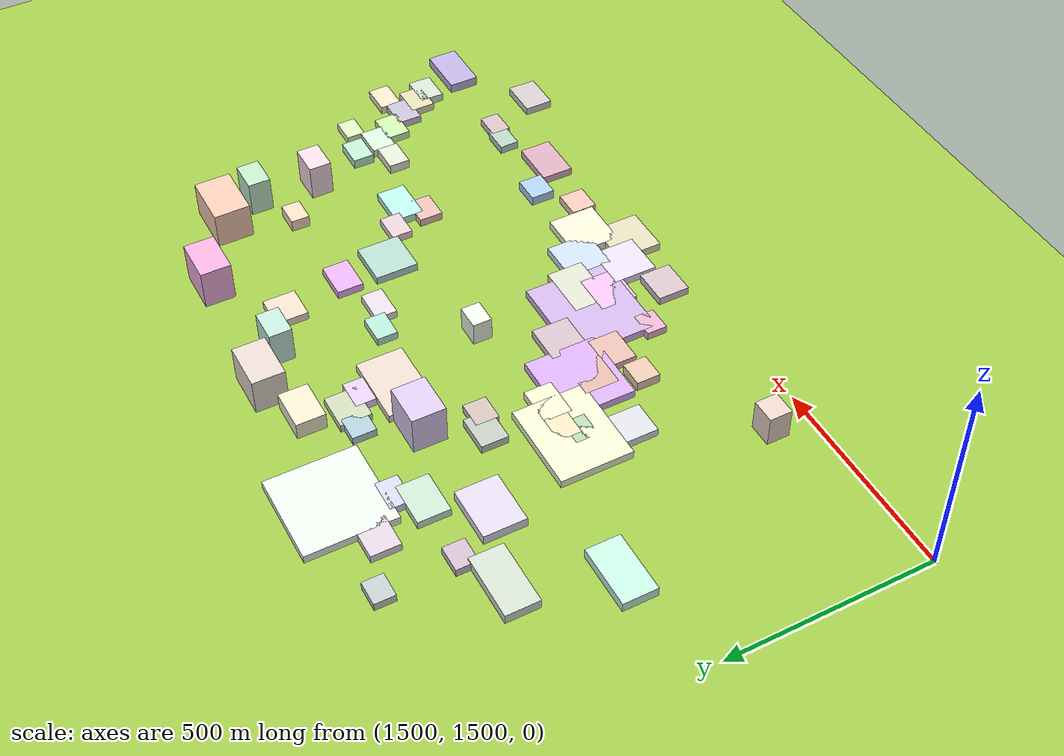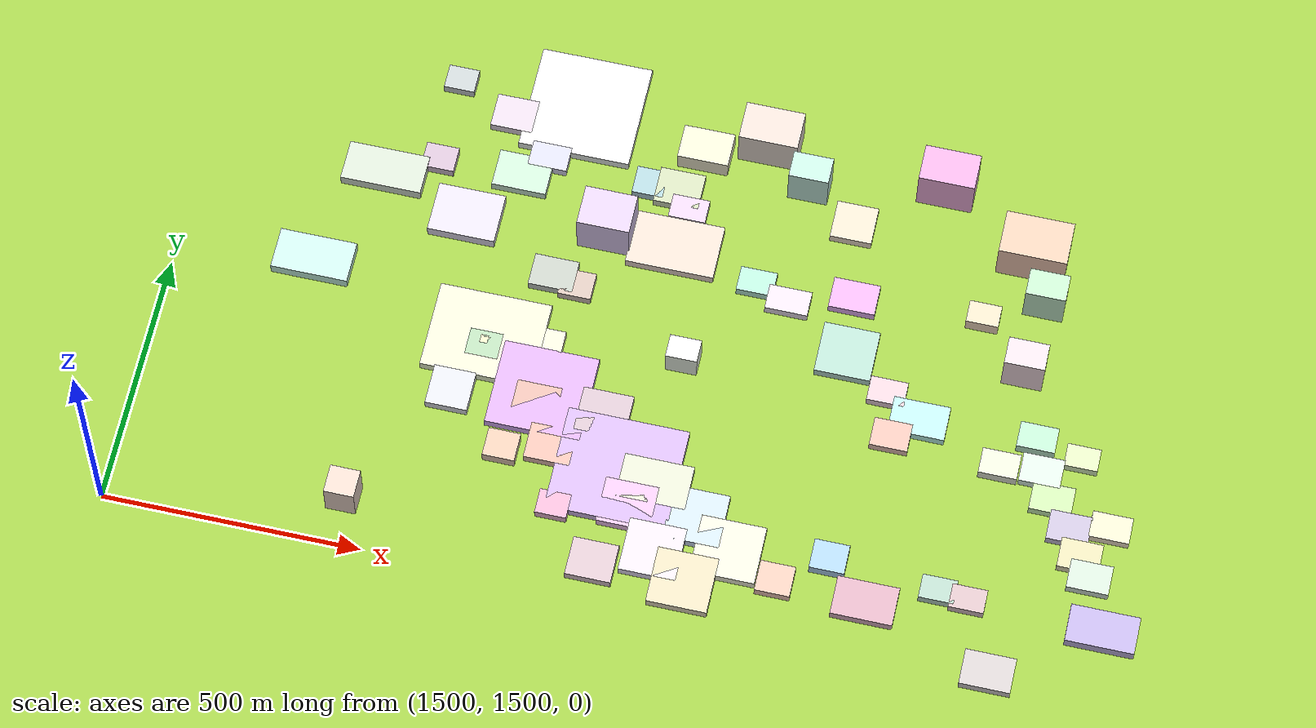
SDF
<sdf version="1.9">
 <world name="city_map">
  <model name="ground_plane">
   <static>1</static>
   <link name="link">
    <collision name="collision">
     <geometry><plane><normal>0 0 1</normal><size>11000 11000</size></plane></geometry>
    </collision>
    <visual name="visual">
     <geometry><plane><normal>0 0 1</normal><size>11000 11000</size></plane></geometry>
     <material>
      <ambient>0.551 0.712 0.210 1</ambient>
      <diffuse>0.651 0.812 0.310 1</diffuse>
      <specular>0.1 0.1 0.05 1</specular>
     </material>
    </visual>
   </link>
  </model>
  <model name="building_192952593">
   <static>1</static>
   <pose>2430.9733242705074 1758.978914244576 10.0 0 0 0</pose>
   <link name="link">
    <collision name="collision">
     <geometry><box><size>233.57729999990795 207.46160318499068 20</size></box></geometry>
    </collision>
    <visual name="visual">
     <cast_shadows>false</cast_shadows>
     <geometry><box><size>233.57729999990795 207.46160318499068 20</size></box></geometry>
     <material>
      <ambient>0.739 0.631 0.830 1</ambient>
      <diffuse>0.839 0.731 0.930 1</diffuse>
      <specular>0.252 0.219 0.279 1</specular>
      <emissive>0.01 0.01 0.01 1</emissive>
     </material>
    </visual>
   </link>
  </model>
  <model name="building_914025178">
   <static>1</static>
   <pose>2199.97340372715 2501.3868979094004 10.0 0 0 0</pose>
   <link name="link">
    <collision name="collision">
     <geometry><box><size>218.64249799259497 214.09680000019193 20</size></box></geometry>
    </collision>
    <visual name="visual">
     <cast_shadows>false</cast_shadows>
     <geometry><box><size>218.64249799259497 214.09680000019193 20</size></box></geometry>
     <material>
      <ambient>0.839 0.862 0.839 1</ambient>
      <diffuse>0.939 0.962 0.939 1</diffuse>
      <specular>0.282 0.289 0.282 1</specular>
      <emissive>0.01 0.01 0.01 1</emissive>
     </material>
    </visual>
   </link>
  </model>
  <model name="building_987098441">
   <static>1</static>
   <pose>2126.0891498155593 1977.3232361965406 10.0 0 0 0</pose>
   <link name="link">
    <collision name="collision">
     <geometry><box><size>217.82639999960907 174.1131540679795 20</size></box></geometry>
    </collision>
    <visual name="visual">
     <cast_shadows>false</cast_shadows>
     <geometry><box><size>217.82639999960907 174.1131540679795 20</size></box></geometry>
     <material>
      <ambient>0.859 0.899 0.741 1</ambient>
      <diffuse>0.959 0.999 0.841 1</diffuse>
      <specular>0.288 0.300 0.252 1</specular>
      <emissive>0.01 0.01 0.01 1</emissive>
     </material>
    </visual>
   </link>
  </model>
  <model name="building_529718011">
   <static>1</static>
   <pose>2256.605788736338 1886.7054164940168 10.0 0 0 0</pose>
   <link name="link">
    <collision name="collision">
     <geometry><box><size>183.77112242357052 172.79369999941707 20</size></box></geometry>
    </collision>
    <visual name="visual">
     <cast_shadows>false</cast_shadows>
     <geometry><box><size>183.77112242357052 172.79369999941707 20</size></box></geometry>
     <material>
      <ambient>0.770 0.605 0.899 1</ambient>
      <diffuse>0.870 0.705 0.999 1</diffuse>
      <specular>0.261 0.211 0.300 1</specular>
      <emissive>0.01 0.01 0.01 1</emissive>
     </material>
    </visual>
   </link>
  </model>
  <model name="building_26879220">
   <static>1</static>
   <pose>2434.777038205377 2245.1851874768613 10.0 0 0 0</pose>
   <link name="link">
    <collision name="collision">
     <geometry><box><size>172.15175727633857 111.17760000023935 20</size></box></geometry>
    </collision>
    <visual name="visual">
     <cast_shadows>false</cast_shadows>
     <geometry><box><size>172.15175727633857 111.17760000023935 20</size></box></geometry>
     <material>
      <ambient>0.846 0.770 0.721 1</ambient>
      <diffuse>0.946 0.870 0.821 1</diffuse>
      <specular>0.284 0.261 0.246 1</specular>
      <emissive>0.01 0.01 0.01 1</emissive>
     </material>
    </visual>
   </link>
  </model>
  <model name="building_103001365">
   <static>1</static>
   <pose>2668.338405556142 1644.0370597681338 10.0 0 0 0</pose>
   <link name="link">
    <collision name="collision">
     <geometry><box><size>123.8771522375564 115.70639999953158 20</size></box></geometry>
    </collision>
    <visual name="visual">
     <cast_shadows>false</cast_shadows>
     <geometry><box><size>123.8771522375564 115.70639999953158 20</size></box></geometry>
     <material>
      <ambient>0.877 0.870 0.767 1</ambient>
      <diffuse>0.977 0.970 0.867 1</diffuse>
      <specular>0.293 0.291 0.260 1</specular>
      <emissive>0.01 0.01 0.01 1</emissive>
     </material>
    </visual>
   </link>
  </model>
  <model name="building_860429482">
   <static>1</static>
   <pose>2029.0040202312794 2221.932590815237 12.0 0 0 0</pose>
   <link name="link">
    <collision name="collision">
     <geometry><box><size>131.77462947324065 100.96559999999499 24.0</size></box></geometry>
    </collision>
    <visual name="visual">
     <cast_shadows>false</cast_shadows>
     <geometry><box><size>131.77462947324065 100.96559999999499 24.0</size></box></geometry>
     <material>
      <ambient>0.801 0.777 0.850 1</ambient>
      <diffuse>0.901 0.877 0.950 1</diffuse>
      <specular>0.270 0.263 0.285 1</specular>
      <emissive>0.01 0.01 0.01 1</emissive>
     </material>
    </visual>
   </link>
  </model>
  <model name="building_731170003">
   <static>1</static>
   <pose>2598.63968392416 1565.1178789204816 10.0 0 0 0</pose>
   <link name="link">
    <collision name="collision">
     <geometry><box><size>115.48656158688344 111.27749999982939 20</size></box></geometry>
    </collision>
    <visual name="visual">
     <cast_shadows>false</cast_shadows>
     <geometry><box><size>115.48656158688344 111.27749999982939 20</size></box></geometry>
     <material>
      <ambient>0.816 0.780 0.661 1</ambient>
      <diffuse>0.916 0.880 0.761 1</diffuse>
      <specular>0.275 0.264 0.228 1</specular>
      <emissive>0.01 0.01 0.01 1</emissive>
     </material>
    </visual>
   </link>
  </model>
  <model name="building_128959019">
   <static>1</static>
   <pose>1852.41198844458 2282.8746508487125 12.0 0 0 0</pose>
   <link name="link">
    <collision name="collision">
     <geometry><box><size>158.29709999957942 80.5399535384255 24.0</size></box></geometry>
    </collision>
    <visual name="visual">
     <cast_shadows>false</cast_shadows>
     <geometry><box><size>158.29709999957942 80.5399535384255 24.0</size></box></geometry>
     <material>
      <ambient>0.748 0.793 0.731 1</ambient>
      <diffuse>0.848 0.893 0.831 1</diffuse>
      <specular>0.254 0.268 0.249 1</specular>
      <emissive>0.01 0.01 0.01 1</emissive>
     </material>
    </visual>
   </link>
  </model>
  <model name="building_422966685">
   <static>1</static>
   <pose>1765.1840577268715 2067.92727549437 12.0 0 0 0</pose>
   <link name="link">
    <collision name="collision">
     <geometry><box><size>150.27707911580976 82.78379999968166 24.0</size></box></geometry>
    </collision>
    <visual name="visual">
     <cast_shadows>false</cast_shadows>
     <geometry><box><size>150.27707911580976 82.78379999968166 24.0</size></box></geometry>
     <material>
      <ambient>0.696 0.881 0.805 1</ambient>
      <diffuse>0.796 0.981 0.905 1</diffuse>
      <specular>0.239 0.294 0.271 1</specular>
      <emissive>0.01 0.01 0.01 1</emissive>
     </material>
    </visual>
   </link>
  </model>
  <model name="building_61609927">
   <static>1</static>
   <pose>2505.773907117025 1749.1113927591066 10.0 0 0 0</pose>
   <link name="link">
    <collision name="collision">
     <geometry><box><size>133.42159946050293 88.6224000000837 20</size></box></geometry>
    </collision>
    <visual name="visual">
     <cast_shadows>false</cast_shadows>
     <geometry><box><size>133.42159946050293 88.6224000000837 20</size></box></geometry>
     <material>
      <ambient>0.795 0.810 0.730 1</ambient>
      <diffuse>0.895 0.910 0.830 1</diffuse>
      <specular>0.269 0.273 0.249 1</specular>
      <emissive>0.01 0.01 0.01 1</emissive>
     </material>
    </visual>
   </link>
  </model>
  <model name="building_470283680">
   <static>1</static>
   <pose>2531.378564185769 1613.6621232859181 10.0 0 0 0</pose>
   <link name="link">
    <collision name="collision">
     <geometry><box><size>108.92429999993425 106.40391803024842 20</size></box></geometry>
    </collision>
    <visual name="visual">
     <cast_shadows>false</cast_shadows>
     <geometry><box><size>108.92429999993425 106.40391803024842 20</size></box></geometry>
     <material>
      <ambient>0.827 0.799 0.879 1</ambient>
      <diffuse>0.927 0.899 0.979 1</diffuse>
      <specular>0.278 0.270 0.294 1</specular>
      <emissive>0.01 0.01 0.01 1</emissive>
     </material>
    </visual>
   </link>
  </model>
  <model name="building_365911970">
   <static>1</static>
   <pose>3110.133406449725 2376.165444056595 45.0 0 0 0</pose>
   <link name="link">
    <collision name="collision">
     <geometry><box><size>132.081319806695 87.59009999985068 90.0</size></box></geometry>
    </collision>
    <visual name="visual">
     <cast_shadows>false</cast_shadows>
     <geometry><box><size>132.081319806695 87.59009999985068 90.0</size></box></geometry>
     <material>
      <ambient>0.885 0.715 0.625 1</ambient>
      <diffuse>0.985 0.815 0.725 1</diffuse>
      <specular>0.295 0.244 0.218 1</specular>
      <emissive>0.01 0.01 0.01 1</emissive>
     </material>
    </visual>
   </link>
  </model>
  <model name="building_368967181">
   <static>1</static>
   <pose>2596.469797172942 1696.5953612398346 10.0 0 0 0</pose>
   <link name="link">
    <collision name="collision">
     <geometry><box><size>107.68110000039144 107.3742818077617 20</size></box></geometry>
    </collision>
    <visual name="visual">
     <cast_shadows>false</cast_shadows>
     <geometry><box><size>107.68110000039144 107.3742818077617 20</size></box></geometry>
     <material>
      <ambient>0.732 0.795 0.886 1</ambient>
      <diffuse>0.832 0.895 0.986 1</diffuse>
      <specular>0.250 0.269 0.296 1</specular>
      <emissive>0.01 0.01 0.01 1</emissive>
     </material>
    </visual>
   </link>
  </model>
  <model name="building_835293648">
   <static>1</static>
   <pose>2802.4941418998865 2093.728619687179 10.0 0 0 0</pose>
   <link name="link">
    <collision name="collision">
     <geometry><box><size>108.16216271300627 103.75170000021683 20</size></box></geometry>
    </collision>
    <visual name="visual">
     <cast_shadows>false</cast_shadows>
     <geometry><box><size>108.16216271300627 103.75170000021683 20</size></box></geometry>
     <material>
      <ambient>0.634 0.774 0.723 1</ambient>
      <diffuse>0.734 0.874 0.823 1</diffuse>
      <specular>0.220 0.262 0.247 1</specular>
      <emissive>0.01 0.01 0.01 1</emissive>
     </material>
    </visual>
   </link>
  </model>
  <model name="building_928542200">
   <static>1</static>
   <pose>3375.574840193279 1638.4220323812401 12.0 0 0 0</pose>
   <link name="link">
    <collision name="collision">
     <geometry><box><size>130.23759239641038 74.00370000039658 24.0</size></box></geometry>
    </collision>
    <visual name="visual">
     <cast_shadows>false</cast_shadows>
     <geometry><box><size>130.23759239641038 74.00370000039658 24.0</size></box></geometry>
     <material>
      <ambient>0.666 0.614 0.798 1</ambient>
      <diffuse>0.766 0.714 0.898 1</diffuse>
      <specular>0.230 0.214 0.269 1</specular>
      <emissive>0.01 0.01 0.01 1</emissive>
     </material>
    </visual>
   </link>
  </model>
  <model name="building_656320233">
   <static>1</static>
   <pose>2465.5933922599443 1693.0087082582145 10.0 0 0 0</pose>
   <link name="link">
    <collision name="collision">
     <geometry><box><size>101.70968976341769 90.64260000003088 20</size></box></geometry>
    </collision>
    <visual name="visual">
     <cast_shadows>false</cast_shadows>
     <geometry><box><size>101.70968976341769 90.64260000003088 20</size></box></geometry>
     <material>
      <ambient>0.874 0.686 0.854 1</ambient>
      <diffuse>0.974 0.786 0.954 1</diffuse>
      <specular>0.292 0.236 0.286 1</specular>
      <emissive>0.01 0.01 0.01 1</emissive>
     </material>
    </visual>
   </link>
  </model>
  <model name="building_252277501">
   <static>1</static>
   <pose>2936.7718948994457 1598.8558381535122 10.0 0 0 0</pose>
   <link name="link">
    <collision name="collision">
     <geometry><box><size>117.3935999995308 76.92512779703098 20</size></box></geometry>
    </collision>
    <visual name="visual">
     <cast_shadows>false</cast_shadows>
     <geometry><box><size>117.3935999995308 76.92512779703098 20</size></box></geometry>
     <material>
      <ambient>0.771 0.604 0.663 1</ambient>
      <diffuse>0.871 0.704 0.763 1</diffuse>
      <specular>0.261 0.211 0.229 1</specular>
      <emissive>0.01 0.01 0.01 1</emissive>
     </material>
    </visual>
   </link>
  </model>
  <model name="building_235426715">
   <static>1</static>
   <pose>2568.6385217445713 2502.6373418812727 45.0 0 0 0</pose>
   <link name="link">
    <collision name="collision">
     <geometry><box><size>115.62646297725092 77.47799999998506 90.0</size></box></geometry>
    </collision>
    <visual name="visual">
     <cast_shadows>false</cast_shadows>
     <geometry><box><size>115.62646297725092 77.47799999998506 90.0</size></box></geometry>
     <material>
      <ambient>0.820 0.767 0.733 1</ambient>
      <diffuse>0.920 0.867 0.833 1</diffuse>
      <specular>0.276 0.260 0.250 1</specular>
      <emissive>0.01 0.01 0.01 1</emissive>
     </material>
    </visual>
   </link>
  </model>
  <model name="building_659306397">
   <static>1</static>
   <pose>2380.9794057416066 1866.5786398908301 10.0 0 0 0</pose>
   <link name="link">
    <collision name="collision">
     <geometry><box><size>97.27029526275456 89.29950000010933 20</size></box></geometry>
    </collision>
    <visual name="visual">
     <cast_shadows>false</cast_shadows>
     <geometry><box><size>97.27029526275456 89.29950000010933 20</size></box></geometry>
     <material>
      <ambient>0.748 0.671 0.710 1</ambient>
      <diffuse>0.848 0.771 0.810 1</diffuse>
      <specular>0.254 0.231 0.243 1</specular>
      <emissive>0.01 0.01 0.01 1</emissive>
     </material>
    </visual>
   </link>
  </model>
  <model name="building_37925452">
   <static>1</static>
   <pose>2300.092529569518 2250.944316047715 48.21572776327822 0 0 0</pose>
   <link name="link">
    <collision name="collision">
     <geometry><box><size>102.35988789310927 80.04209999997869 96.43145552655643</size></box></geometry>
    </collision>
    <visual name="visual">
     <cast_shadows>false</cast_shadows>
     <geometry><box><size>102.35988789310927 80.04209999997869 96.43145552655643</size></box></geometry>
     <material>
      <ambient>0.786 0.717 0.865 1</ambient>
      <diffuse>0.886 0.817 0.965 1</diffuse>
      <specular>0.266 0.245 0.289 1</specular>
      <emissive>0.01 0.01 0.01 1</emissive>
     </material>
    </visual>
   </link>
  </model>
  <model name="building_375896375">
   <static>1</static>
   <pose>2113.970897882334 2333.3302256991924 10.0 0 0 0</pose>
   <link name="link">
    <collision name="collision">
     <geometry><box><size>106.5367473003742 76.51229999974163 20</size></box></geometry>
    </collision>
    <visual name="visual">
     <cast_shadows>false</cast_shadows>
     <geometry><box><size>106.5367473003742 76.51229999974163 20</size></box></geometry>
     <material>
      <ambient>0.712 0.825 0.740 1</ambient>
      <diffuse>0.812 0.925 0.840 1</diffuse>
      <specular>0.244 0.278 0.252 1</specular>
      <emissive>0.01 0.01 0.01 1</emissive>
     </material>
    </visual>
   </link>
  </model>
  <model name="building_501459152">
   <static>1</static>
   <pose>2920.609041519177 2484.1756509754946 49.5 0 0 0</pose>
   <link name="link">
    <collision name="collision">
     <geometry><box><size>108.93540000006396 72.83384587553952 99.0</size></box></geometry>
    </collision>
    <visual name="visual">
     <cast_shadows>false</cast_shadows>
     <geometry><box><size>108.93540000006396 72.83384587553952 99.0</size></box></geometry>
     <material>
      <ambient>0.871 0.606 0.788 1</ambient>
      <diffuse>0.971 0.706 0.888 1</diffuse>
      <specular>0.291 0.212 0.266 1</specular>
      <emissive>0.01 0.01 0.01 1</emissive>
     </material>
    </visual>
   </link>
  </model>
  <model name="building_86441977">
   <static>1</static>
   <pose>2962.7184572897877 1986.1794778310127 10.0 0 0 0</pose>
   <link name="link">
    <collision name="collision">
     <geometry><box><size>108.71848352655469 70.04099999983282 20</size></box></geometry>
    </collision>
    <visual name="visual">
     <cast_shadows>false</cast_shadows>
     <geometry><box><size>108.71848352655469 70.04099999983282 20</size></box></geometry>
     <material>
      <ambient>0.656 0.890 0.834 1</ambient>
      <diffuse>0.756 0.990 0.934 1</diffuse>
      <specular>0.227 0.297 0.280 1</specular>
      <emissive>0.01 0.01 0.01 1</emissive>
     </material>
    </visual>
   </link>
  </model>
  <model name="building_420103031">
   <static>1</static>
   <pose>2250.3979114177955 1857.2741661277898 10.0 0 0 0</pose>
   <link name="link">
    <collision name="collision">
     <geometry><box><size>86.0019569372742 81.67380000011804 20</size></box></geometry>
    </collision>
    <visual name="visual">
     <cast_shadows>false</cast_shadows>
     <geometry><box><size>86.0019569372742 81.67380000011804 20</size></box></geometry>
     <material>
      <ambient>0.806 0.641 0.602 1</ambient>
      <diffuse>0.906 0.741 0.702 1</diffuse>
      <specular>0.272 0.222 0.211 1</specular>
      <emissive>0.01 0.01 0.01 1</emissive>
     </material>
    </visual>
   </link>
  </model>
  <model name="building_519925012">
   <static>1</static>
   <pose>2449.496857601875 2457.2089634755143 21.0 0 0 0</pose>
   <link name="link">
    <collision name="collision">
     <geometry><box><size>99.90000000016153 69.55314692229837 42.0</size></box></geometry>
    </collision>
    <visual name="visual">
     <cast_shadows>false</cast_shadows>
     <geometry><box><size>99.90000000016153 69.55314692229837 42.0</size></box></geometry>
     <material>
      <ambient>0.867 0.842 0.732 1</ambient>
      <diffuse>0.967 0.942 0.832 1</diffuse>
      <specular>0.290 0.282 0.249 1</specular>
      <emissive>0.01 0.01 0.01 1</emissive>
     </material>
    </visual>
   </link>
  </model>
  <model name="building_672357499">
   <static>1</static>
   <pose>3184.31115953575 1511.4071564220287 10.0 0 0 0</pose>
   <link name="link">
    <collision name="collision">
     <geometry><box><size>96.12599999943683 69.72889788699418 20</size></box></geometry>
    </collision>
    <visual name="visual">
     <cast_shadows>false</cast_shadows>
     <geometry><box><size>96.12599999943683 69.72889788699418 20</size></box></geometry>
     <material>
      <ambient>0.740 0.716 0.713 1</ambient>
      <diffuse>0.840 0.816 0.813 1</diffuse>
      <specular>0.252 0.245 0.244 1</specular>
      <emissive>0.01 0.01 0.01 1</emissive>
     </material>
    </visual>
   </link>
  </model>
  <model name="building_821713199">
   <static>1</static>
   <pose>2426.137123430618 1567.694709943424 10.0 0 0 0</pose>
   <link name="link">
    <collision name="collision">
     <geometry><box><size>87.12109278756314 76.7120999997104 20</size></box></geometry>
    </collision>
    <visual name="visual">
     <cast_shadows>false</cast_shadows>
     <geometry><box><size>87.12109278756314 76.7120999997104 20</size></box></geometry>
     <material>
      <ambient>0.767 0.682 0.709 1</ambient>
      <diffuse>0.867 0.782 0.809 1</diffuse>
      <specular>0.260 0.235 0.243 1</specular>
      <emissive>0.01 0.01 0.01 1</emissive>
     </material>
    </visual>
   </link>
  </model>
  <model name="building_933528810">
   <static>1</static>
   <pose>2416.909498622755 2366.0187903607903 10.0 0 0 0</pose>
   <link name="link">
    <collision name="collision">
     <geometry><box><size>88.24499999961688 73.88200576482764 20</size></box></geometry>
    </collision>
    <visual name="visual">
     <cast_shadows>false</cast_shadows>
     <geometry><box><size>88.24499999961688 73.88200576482764 20</size></box></geometry>
     <material>
      <ambient>0.732 0.769 0.640 1</ambient>
      <diffuse>0.832 0.869 0.740 1</diffuse>
      <specular>0.249 0.261 0.222 1</specular>
      <emissive>0.01 0.01 0.01 1</emissive>
     </material>
    </visual>
   </link>
  </model>
  <model name="building_663998358">
   <static>1</static>
   <pose>2086.6051354082297 1853.7357541649299 10.0 0 0 0</pose>
   <link name="link">
    <collision name="collision">
     <geometry><box><size>81.05219999995228 80.2023045693643 20</size></box></geometry>
    </collision>
    <visual name="visual">
     <cast_shadows>false</cast_shadows>
     <geometry><box><size>81.05219999995228 80.2023045693643 20</size></box></geometry>
     <material>
      <ambient>0.789 0.797 0.818 1</ambient>
      <diffuse>0.889 0.897 0.918 1</diffuse>
      <specular>0.267 0.269 0.275 1</specular>
      <emissive>0.01 0.01 0.01 1</emissive>
     </material>
    </visual>
   </link>
  </model>
  <model name="building_169691002">
   <static>1</static>
   <pose>2297.2188964480133 1781.2447674105335 10.0 0 0 0</pose>
   <link name="link">
    <collision name="collision">
     <geometry><box><size>88.46089873340165 72.51630000036613 20</size></box></geometry>
    </collision>
    <visual name="visual">
     <cast_shadows>false</cast_shadows>
     <geometry><box><size>88.46089873340165 72.51630000036613 20</size></box></geometry>
     <material>
      <ambient>0.827 0.658 0.608 1</ambient>
      <diffuse>0.927 0.758 0.708 1</diffuse>
      <specular>0.278 0.227 0.213 1</specular>
      <emissive>0.01 0.01 0.01 1</emissive>
     </material>
    </visual>
   </link>
  </model>
  <model name="building_261210927">
   <static>1</static>
   <pose>2226.547626393516 1982.0368594473762 10.0 0 0 0</pose>
   <link name="link">
    <collision name="collision">
     <geometry><box><size>94.69410000005496 66.79881674754672 20</size></box></geometry>
    </collision>
    <visual name="visual">
     <cast_shadows>false</cast_shadows>
     <geometry><box><size>94.69410000005496 66.79881674754672 20</size></box></geometry>
     <material>
      <ambient>0.898 0.874 0.749 1</ambient>
      <diffuse>0.998 0.974 0.849 1</diffuse>
      <specular>0.300 0.292 0.255 1</specular>
      <emissive>0.01 0.01 0.01 1</emissive>
     </material>
    </visual>
   </link>
  </model>
  <model name="building_591414991">
   <static>1</static>
   <pose>2760.7401498299105 2367.388024471043 10.0 0 0 0</pose>
   <link name="link">
    <collision name="collision">
     <geometry><box><size>80.96339999970326 77.62867936474669 20</size></box></geometry>
    </collision>
    <visual name="visual">
     <cast_shadows>false</cast_shadows>
     <geometry><box><size>80.96339999970326 77.62867936474669 20</size></box></geometry>
     <material>
      <ambient>0.860 0.792 0.711 1</ambient>
      <diffuse>0.960 0.892 0.811 1</diffuse>
      <specular>0.288 0.267 0.243 1</specular>
      <emissive>0.01 0.01 0.01 1</emissive>
     </material>
    </visual>
   </link>
  </model>
  <model name="building_726358500">
   <static>1</static>
   <pose>2069.186490193668 2456.103191705152 10.0 0 0 0</pose>
   <link name="link">
    <collision name="collision">
     <geometry><box><size>81.98154731748468 69.65250000002499 20</size></box></geometry>
    </collision>
    <visual name="visual">
     <cast_shadows>false</cast_shadows>
     <geometry><box><size>81.98154731748468 69.65250000002499 20</size></box></geometry>
     <material>
      <ambient>0.802 0.752 0.802 1</ambient>
      <diffuse>0.902 0.852 0.902 1</diffuse>
      <specular>0.270 0.255 0.271 1</specular>
      <emissive>0.01 0.01 0.01 1</emissive>
     </material>
    </visual>
   </link>
  </model>
  <model name="building_327212172">
   <static>1</static>
   <pose>2792.463577004893 2211.956197769393 10.0 0 0 0</pose>
   <link name="link">
    <collision name="collision">
     <geometry><box><size>89.90999999935667 63.23093228611045 20</size></box></geometry>
    </collision>
    <visual name="visual">
     <cast_shadows>false</cast_shadows>
     <geometry><box><size>89.90999999935667 63.23093228611045 20</size></box></geometry>
     <material>
      <ambient>0.833 0.619 0.890 1</ambient>
      <diffuse>0.933 0.719 0.990 1</diffuse>
      <specular>0.280 0.216 0.297 1</specular>
      <emissive>0.01 0.01 0.01 1</emissive>
     </material>
    </visual>
   </link>
  </model>
  <model name="building_921285">
   <static>1</static>
   <pose>2221.6335494286323 2133.7782218439306 10.0 0 0 0</pose>
   <link name="link">
    <collision name="collision">
     <geometry><box><size>86.33579999938945 65.04126799993121 20</size></box></geometry>
    </collision>
    <visual name="visual">
     <cast_shadows>false</cast_shadows>
     <geometry><box><size>86.33579999938945 65.04126799993121 20</size></box></geometry>
     <material>
      <ambient>0.683 0.708 0.673 1</ambient>
      <diffuse>0.783 0.808 0.773 1</diffuse>
      <specular>0.235 0.242 0.232 1</specular>
      <emissive>0.01 0.01 0.01 1</emissive>
     </material>
    </visual>
   </link>
  </model>
  <model name="building_733882356">
   <static>1</static>
   <pose>3278.889847396688 1827.183204004964 10.0 0 0 0</pose>
   <link name="link">
    <collision name="collision">
     <geometry><box><size>79.16295077658053 59.606999999360255 20</size></box></geometry>
    </collision>
    <visual name="visual">
     <cast_shadows>false</cast_shadows>
     <geometry><box><size>79.16295077658053 59.606999999360255 20</size></box></geometry>
     <material>
      <ambient>0.701 0.669 0.760 1</ambient>
      <diffuse>0.801 0.769 0.860 1</diffuse>
      <specular>0.240 0.231 0.258 1</specular>
      <emissive>0.01 0.01 0.01 1</emissive>
     </material>
    </visual>
   </link>
  </model>
  <model name="building_395934590">
   <static>1</static>
   <pose>3308.651260975953 1776.1813179853762 10.0 0 0 0</pose>
   <link name="link">
    <collision name="collision">
     <geometry><box><size>78.79915774688958 59.74019999933944 20</size></box></geometry>
    </collision>
    <visual name="visual">
     <cast_shadows>false</cast_shadows>
     <geometry><box><size>78.79915774688958 59.74019999933944 20</size></box></geometry>
     <material>
      <ambient>0.810 0.785 0.631 1</ambient>
      <diffuse>0.910 0.885 0.731 1</diffuse>
      <specular>0.273 0.266 0.219 1</specular>
      <emissive>0.01 0.01 0.01 1</emissive>
     </material>
    </visual>
   </link>
  </model>
  <model name="building_57052618">
   <static>1</static>
   <pose>3237.043109930977 1879.0441471414688 10.0 0 0 0</pose>
   <link name="link">
    <collision name="collision">
     <geometry><box><size>80.06008307508039 58.31939999929858 20</size></box></geometry>
    </collision>
    <visual name="visual">
     <cast_shadows>false</cast_shadows>
     <geometry><box><size>80.06008307508039 58.31939999929858 20</size></box></geometry>
     <material>
      <ambient>0.718 0.874 0.615 1</ambient>
      <diffuse>0.818 0.974 0.715 1</diffuse>
      <specular>0.246 0.292 0.215 1</specular>
      <emissive>0.01 0.01 0.01 1</emissive>
     </material>
    </visual>
   </link>
  </model>
  <model name="building_613563772">
   <static>1</static>
   <pose>3207.5780610677857 1931.7950203426215 10.0 0 0 0</pose>
   <link name="link">
    <collision name="collision">
     <geometry><box><size>79.03304248517381 58.75229999962528 20</size></box></geometry>
    </collision>
    <visual name="visual">
     <cast_shadows>false</cast_shadows>
     <geometry><box><size>79.03304248517381 58.75229999962528 20</size></box></geometry>
     <material>
      <ambient>0.773 0.871 0.794 1</ambient>
      <diffuse>0.873 0.971 0.894 1</diffuse>
      <specular>0.262 0.291 0.268 1</specular>
      <emissive>0.01 0.01 0.01 1</emissive>
     </material>
    </visual>
   </link>
  </model>
  <model name="building_948668681">
   <static>1</static>
   <pose>3333.777372851778 1737.8824803846492 10.0 0 0 0</pose>
   <link name="link">
    <collision name="collision">
     <geometry><box><size>79.67768066422563 58.14179999958924 20</size></box></geometry>
    </collision>
    <visual name="visual">
     <cast_shadows>false</cast_shadows>
     <geometry><box><size>79.67768066422563 58.14179999958924 20</size></box></geometry>
     <material>
      <ambient>0.743 0.810 0.752 1</ambient>
      <diffuse>0.843 0.910 0.852 1</diffuse>
      <specular>0.253 0.273 0.256 1</specular>
      <emissive>0.01 0.01 0.01 1</emissive>
     </material>
    </visual>
   </link>
  </model>
  <model name="building_276161324">
   <static>1</static>
   <pose>3136.973486648848 2129.818623454093 45.0 0 0 0</pose>
   <link name="link">
    <collision name="collision">
     <geometry><box><size>77.95529999925321 54.603953740035436 90.0</size></box></geometry>
    </collision>
    <visual name="visual">
     <cast_shadows>false</cast_shadows>
     <geometry><box><size>77.95529999925321 54.603953740035436 90.0</size></box></geometry>
     <material>
      <ambient>0.877 0.778 0.804 1</ambient>
      <diffuse>0.977 0.878 0.904 1</diffuse>
      <specular>0.293 0.263 0.271 1</specular>
      <emissive>0.01 0.01 0.01 1</emissive>
     </material>
    </visual>
   </link>
  </model>
  <model name="building_159043106">
   <static>1</static>
   <pose>2671.379582216015 2175.857270264695 10.0 0 0 0</pose>
   <link name="link">
    <collision name="collision">
     <geometry><box><size>82.86401760628371 50.93789999979492 20</size></box></geometry>
    </collision>
    <visual name="visual">
     <cast_shadows>false</cast_shadows>
     <geometry><box><size>82.86401760628371 50.93789999979492 20</size></box></geometry>
     <material>
      <ambient>0.834 0.789 0.841 1</ambient>
      <diffuse>0.934 0.889 0.941 1</diffuse>
      <specular>0.280 0.267 0.282 1</specular>
      <emissive>0.01 0.01 0.01 1</emissive>
     </material>
    </visual>
   </link>
  </model>
  <model name="building_420857389">
   <static>1</static>
   <pose>2660.6092795419668 2429.5846842985784 45.0 0 0 0</pose>
   <link name="link">
    <collision name="collision">
     <geometry><box><size>77.82351412752665 53.83500000052521 90.0</size></box></geometry>
    </collision>
    <visual name="visual">
     <cast_shadows>false</cast_shadows>
     <geometry><box><size>77.82351412752665 53.83500000052521 90.0</size></box></geometry>
     <material>
      <ambient>0.680 0.832 0.776 1</ambient>
      <diffuse>0.780 0.932 0.876 1</diffuse>
      <specular>0.234 0.280 0.263 1</specular>
      <emissive>0.01 0.01 0.01 1</emissive>
     </material>
    </visual>
   </link>
  </model>
  <model name="building_747955985">
   <static>1</static>
   <pose>3149.432232991203 2281.4666174135477 45.0 0 0 0</pose>
   <link name="link">
    <collision name="collision">
     <geometry><box><size>77.41139999999547 54.075640961411466 90.0</size></box></geometry>
    </collision>
    <visual name="visual">
     <cast_shadows>false</cast_shadows>
     <geometry><box><size>77.41139999999547 54.075640961411466 90.0</size></box></geometry>
     <material>
      <ambient>0.679 0.833 0.706 1</ambient>
      <diffuse>0.779 0.933 0.806 1</diffuse>
      <specular>0.234 0.280 0.242 1</specular>
      <emissive>0.01 0.01 0.01 1</emissive>
     </material>
    </visual>
   </link>
  </model>
  <model name="building_492413814">
   <static>1</static>
   <pose>2917.285704944584 1941.8147951820108 10.0 0 0 0</pose>
   <link name="link">
    <collision name="collision">
     <geometry><box><size>72.86216937256314 57.40920000049243 20</size></box></geometry>
    </collision>
    <visual name="visual">
     <cast_shadows>false</cast_shadows>
     <geometry><box><size>72.86216937256314 57.40920000049243 20</size></box></geometry>
     <material>
      <ambient>0.827 0.673 0.626 1</ambient>
      <diffuse>0.927 0.773 0.726 1</diffuse>
      <specular>0.278 0.232 0.218 1</specular>
      <emissive>0.01 0.01 0.01 1</emissive>
     </material>
    </visual>
   </link>
  </model>
  <model name="building_794832880">
   <static>1</static>
   <pose>2765.5892833029734 1605.7255011546617 10.0 0 0 0</pose>
   <link name="link">
    <collision name="collision">
     <geometry><box><size>66.79979999981356 61.17287772137342 20</size></box></geometry>
    </collision>
    <visual name="visual">
     <cast_shadows>false</cast_shadows>
     <geometry><box><size>66.79979999981356 61.17287772137342 20</size></box></geometry>
     <material>
      <ambient>0.865 0.696 0.634 1</ambient>
      <diffuse>0.965 0.796 0.734 1</diffuse>
      <specular>0.290 0.239 0.220 1</specular>
      <emissive>0.01 0.01 0.01 1</emissive>
     </material>
    </visual>
   </link>
  </model>
  <model name="building_997459176">
   <static>1</static>
   <pose>3354.60993289726 1845.2753598692807 10.0 0 0 0</pose>
   <link name="link">
    <collision name="collision">
     <geometry><box><size>76.51229999974163 52.629007065433036 20</size></box></geometry>
    </collision>
    <visual name="visual">
     <cast_shadows>false</cast_shadows>
     <geometry><box><size>76.51229999974163 52.629007065433036 20</size></box></geometry>
     <material>
      <ambient>0.874 0.819 0.715 1</ambient>
      <diffuse>0.974 0.919 0.815 1</diffuse>
      <specular>0.292 0.276 0.244 1</specular>
      <emissive>0.01 0.01 0.01 1</emissive>
     </material>
    </visual>
   </link>
  </model>
  <model name="building_422256543">
   <static>1</static>
   <pose>2156.743160909297 2379.4256412895074 10.0 0 0 0</pose>
   <link name="link">
    <collision name="collision">
     <geometry><box><size>76.19058561552048 52.29209999984619 20</size></box></geometry>
    </collision>
    <visual name="visual">
     <cast_shadows>false</cast_shadows>
     <geometry><box><size>76.19058561552048 52.29209999984619 20</size></box></geometry>
     <material>
      <ambient>0.762 0.765 0.854 1</ambient>
      <diffuse>0.862 0.865 0.954 1</diffuse>
      <specular>0.259 0.260 0.286 1</specular>
      <emissive>0.01 0.01 0.01 1</emissive>
     </material>
    </visual>
   </link>
  </model>
  <model name="building_843829218">
   <static>1</static>
   <pose>2855.2080563597037 1670.1675661874756 11.804178237765823 0 0 0</pose>
   <link name="link">
    <collision name="collision">
     <geometry><box><size>66.91080000032201 58.606248173158576 23.608356475531647</size></box></geometry>
    </collision>
    <visual name="visual">
     <cast_shadows>false</cast_shadows>
     <geometry><box><size>66.91080000032201 58.606248173158576 23.608356475531647</size></box></geometry>
     <material>
      <ambient>0.602 0.737 0.856 1</ambient>
      <diffuse>0.702 0.837 0.956 1</diffuse>
      <specular>0.211 0.251 0.287 1</specular>
      <emissive>0.01 0.01 0.01 1</emissive>
     </material>
    </visual>
   </link>
  </model>
  <model name="building_709038249">
   <static>1</static>
   <pose>3187.9215926562365 1995.3447741680723 12.0 0 0 0</pose>
   <link name="link">
    <collision name="collision">
     <geometry><box><size>73.44862727448242 51.85920000030819 24.0</size></box></geometry>
    </collision>
    <visual name="visual">
     <cast_shadows>false</cast_shadows>
     <geometry><box><size>73.44862727448242 51.85920000030819 24.0</size></box></geometry>
     <material>
      <ambient>0.658 0.840 0.723 1</ambient>
      <diffuse>0.758 0.940 0.823 1</diffuse>
      <specular>0.227 0.282 0.247 1</specular>
      <emissive>0.01 0.01 0.01 1</emissive>
     </material>
    </visual>
   </link>
  </model>
  <model name="building_385741099">
   <static>1</static>
   <pose>3128.2266103022807 1926.14393531968 12.0 0 0 0</pose>
   <link name="link">
    <collision name="collision">
     <geometry><box><size>73.7872407656764 51.5040000001008 24.0</size></box></geometry>
    </collision>
    <visual name="visual">
     <cast_shadows>false</cast_shadows>
     <geometry><box><size>73.7872407656764 51.5040000001008 24.0</size></box></geometry>
     <material>
      <ambient>0.811 0.830 0.755 1</ambient>
      <diffuse>0.911 0.930 0.855 1</diffuse>
      <specular>0.273 0.279 0.257 1</specular>
      <emissive>0.01 0.01 0.01 1</emissive>
     </material>
    </visual>
   </link>
  </model>
  <model name="building_41505854">
   <static>1</static>
   <pose>2150.552047902688 1987.1830665525836 10.0 0 0 0</pose>
   <link name="link">
    <collision name="collision">
     <geometry><box><size>66.55560427091531 55.66649999984463 20</size></box></geometry>
    </collision>
    <visual name="visual">
     <cast_shadows>false</cast_shadows>
     <geometry><box><size>66.55560427091531 55.66649999984463 20</size></box></geometry>
     <material>
      <ambient>0.882 0.829 0.681 1</ambient>
      <diffuse>0.982 0.929 0.781 1</diffuse>
      <specular>0.295 0.279 0.234 1</specular>
      <emissive>0.01 0.01 0.01 1</emissive>
     </material>
    </visual>
   </link>
  </model>
  <model name="building_369990665">
   <static>1</static>
   <pose>2893.383692895649 2028.8547403033172 10.0 0 0 0</pose>
   <link name="link">
    <collision name="collision">
     <geometry><box><size>71.88178189268412 50.227500000168845 20</size></box></geometry>
    </collision>
    <visual name="visual">
     <cast_shadows>false</cast_shadows>
     <geometry><box><size>71.88178189268412 50.227500000168845 20</size></box></geometry>
     <material>
      <ambient>0.838 0.730 0.762 1</ambient>
      <diffuse>0.938 0.830 0.862 1</diffuse>
      <specular>0.281 0.249 0.259 1</specular>
      <emissive>0.01 0.01 0.01 1</emissive>
     </material>
    </visual>
   </link>
  </model>
  <model name="building_36095824">
   <static>1</static>
   <pose>2604.222708885626 2201.960427950717 10.0 0 0 0</pose>
   <link name="link">
    <collision name="collision">
     <geometry><box><size>71.17715095485357 50.02770000020007 20</size></box></geometry>
    </collision>
    <visual name="visual">
     <cast_shadows>false</cast_shadows>
     <geometry><box><size>71.17715095485357 50.02770000020007 20</size></box></geometry>
     <material>
      <ambient>0.633 0.833 0.755 1</ambient>
      <diffuse>0.733 0.933 0.855 1</diffuse>
      <specular>0.220 0.280 0.257 1</specular>
      <emissive>0.01 0.01 0.01 1</emissive>
     </material>
    </visual>
   </link>
  </model>
  <model name="building_610306928">
   <static>1</static>
   <pose>2270.183160618571 2120.9475981065457 10.0 0 0 0</pose>
   <link name="link">
    <collision name="collision">
     <geometry><box><size>64.37313812630995 55.07820000006802 20</size></box></geometry>
    </collision>
    <visual name="visual">
     <cast_shadows>false</cast_shadows>
     <geometry><box><size>64.37313812630995 55.07820000006802 20</size></box></geometry>
     <material>
      <ambient>0.750 0.674 0.633 1</ambient>
      <diffuse>0.850 0.774 0.733 1</diffuse>
      <specular>0.255 0.232 0.220 1</specular>
      <emissive>0.01 0.01 0.01 1</emissive>
     </material>
    </visual>
   </link>
  </model>
  <model name="building_63464115">
   <static>1</static>
   <pose>2208.2118808376235 1758.4903739539377 12.0 0 0 0</pose>
   <link name="link">
    <collision name="collision">
     <geometry><box><size>62.01569999990397 57.08598820049217 24.0</size></box></geometry>
    </collision>
    <visual name="visual">
     <cast_shadows>false</cast_shadows>
     <geometry><box><size>62.01569999990397 57.08598820049217 24.0</size></box></geometry>
     <material>
      <ambient>0.823 0.704 0.616 1</ambient>
      <diffuse>0.923 0.804 0.716 1</diffuse>
      <specular>0.277 0.241 0.215 1</specular>
      <emissive>0.01 0.01 0.01 1</emissive>
     </material>
    </visual>
   </link>
  </model>
  <model name="building_569437934">
   <static>1</static>
   <pose>2444.4817196796766 2326.770013845982 10.0 0 0 0</pose>
   <link name="link">
    <collision name="collision">
     <geometry><box><size>72.33869999986808 48.404362997316504 20</size></box></geometry>
    </collision>
    <visual name="visual">
     <cast_shadows>false</cast_shadows>
     <geometry><box><size>72.33869999986808 48.404362997316504 20</size></box></geometry>
     <material>
      <ambient>0.814 0.730 0.884 1</ambient>
      <diffuse>0.914 0.830 0.984 1</diffuse>
      <specular>0.274 0.249 0.295 1</specular>
      <emissive>0.01 0.01 0.01 1</emissive>
     </material>
    </visual>
   </link>
  </model>
  <model name="building_903423719">
   <static>1</static>
   <pose>2358.3629693833473 2366.7370085009297 10.0 0 0 0</pose>
   <link name="link">
    <collision name="collision">
     <geometry><box><size>60.25079999978544 56.76161528653452 20</size></box></geometry>
    </collision>
    <visual name="visual">
     <cast_shadows>false</cast_shadows>
     <geometry><box><size>60.25079999978544 56.76161528653452 20</size></box></geometry>
     <material>
      <ambient>0.606 0.732 0.758 1</ambient>
      <diffuse>0.706 0.832 0.858 1</diffuse>
      <specular>0.212 0.250 0.257 1</specular>
      <emissive>0.01 0.01 0.01 1</emissive>
     </material>
    </visual>
   </link>
  </model>
  <model name="building_62854040">
   <static>1</static>
   <pose>2126.632923509416 1957.7848127193477 10.0 0 0 0</pose>
   <link name="link">
    <collision name="collision">
     <geometry><box><size>63.173516755851054 53.424299999669245 20</size></box></geometry>
    </collision>
    <visual name="visual">
     <cast_shadows>false</cast_shadows>
     <geometry><box><size>63.173516755851054 53.424299999669245 20</size></box></geometry>
     <material>
      <ambient>0.640 0.763 0.628 1</ambient>
      <diffuse>0.740 0.863 0.728 1</diffuse>
      <specular>0.222 0.259 0.218 1</specular>
      <emissive>0.01 0.01 0.01 1</emissive>
     </material>
    </visual>
   </link>
  </model>
  <model name="building_106483890">
   <static>1</static>
   <pose>1950.1816019872858 2330.353775786922 10.0 0 0 0</pose>
   <link name="link">
    <collision name="collision">
     <geometry><box><size>64.06660321617494 52.00350000041709 20</size></box></geometry>
    </collision>
    <visual name="visual">
     <cast_shadows>false</cast_shadows>
     <geometry><box><size>64.06660321617494 52.00350000041709 20</size></box></geometry>
     <material>
      <ambient>0.741 0.659 0.732 1</ambient>
      <diffuse>0.841 0.759 0.832 1</diffuse>
      <specular>0.252 0.228 0.250 1</specular>
      <emissive>0.01 0.01 0.01 1</emissive>
     </material>
    </visual>
   </link>
  </model>
  <model name="building_697688798">
   <static>1</static>
   <pose>1943.579123219054 1596.0054921127069 38.33453015491202 0 0 0</pose>
   <link name="link">
    <collision name="collision">
     <geometry><box><size>57.95214028437517 54.96719999955957 76.66906030982403</size></box></geometry>
    </collision>
    <visual name="visual">
     <cast_shadows>false</cast_shadows>
     <geometry><box><size>57.95214028437517 54.96719999955957 76.66906030982403</size></box></geometry>
     <material>
      <ambient>0.837 0.749 0.701 1</ambient>
      <diffuse>0.937 0.849 0.801 1</diffuse>
      <specular>0.281 0.255 0.240 1</specular>
      <emissive>0.01 0.01 0.01 1</emissive>
     </material>
    </visual>
   </link>
  </model>
  <model name="building_307954752">
   <static>1</static>
   <pose>3064.285616701058 1652.0150826623676 10.0 0 0 0</pose>
   <link name="link">
    <collision name="collision">
     <geometry><box><size>66.5334000006439 47.3307251340113 20</size></box></geometry>
    </collision>
    <visual name="visual">
     <cast_shadows>false</cast_shadows>
     <geometry><box><size>66.5334000006439 47.3307251340113 20</size></box></geometry>
     <material>
      <ambient>0.634 0.746 0.692 1</ambient>
      <diffuse>0.734 0.846 0.792 1</diffuse>
      <specular>0.220 0.254 0.238 1</specular>
      <emissive>0.01 0.01 0.01 1</emissive>
     </material>
    </visual>
   </link>
  </model>
  <model name="building_925607138">
   <static>1</static>
   <pose>3121.989934102367 1645.245694379341 10.0 0 0 0</pose>
   <link name="link">
    <collision name="collision">
     <geometry><box><size>66.35580000014585 47.1620769434688 20</size></box></geometry>
    </collision>
    <visual name="visual">
     <cast_shadows>false</cast_shadows>
     <geometry><box><size>66.35580000014585 47.1620769434688 20</size></box></geometry>
     <material>
      <ambient>0.763 0.666 0.683 1</ambient>
      <diffuse>0.863 0.766 0.783 1</diffuse>
      <specular>0.259 0.230 0.235 1</specular>
      <emissive>0.01 0.01 0.01 1</emissive>
     </material>
    </visual>
   </link>
  </model>
  <model name="building_225630226">
   <static>1</static>
   <pose>1950.3444097850945 2508.5330822167816 10.0 0 0 0</pose>
   <link name="link">
    <collision name="collision">
     <geometry><box><size>60.000359262817554 49.261799999925415 20</size></box></geometry>
    </collision>
    <visual name="visual">
     <cast_shadows>false</cast_shadows>
     <geometry><box><size>60.000359262817554 49.261799999925415 20</size></box></geometry>
     <material>
      <ambient>0.688 0.717 0.722 1</ambient>
      <diffuse>0.788 0.817 0.822 1</diffuse>
      <specular>0.236 0.245 0.247 1</specular>
      <emissive>0.01 0.01 0.01 1</emissive>
     </material>
    </visual>
   </link>
  </model>
  <model name="building_751013825">
   <static>1</static>
   <pose>3277.496043547711 1974.5950595567074 10.0 0 0 0</pose>
   <link name="link">
    <collision name="collision">
     <geometry><box><size>64.10249999984075 45.96391240416686 20</size></box></geometry>
    </collision>
    <visual name="visual">
     <cast_shadows>false</cast_shadows>
     <geometry><box><size>64.10249999984075 45.96391240416686 20</size></box></geometry>
     <material>
      <ambient>0.782 0.874 0.663 1</ambient>
      <diffuse>0.882 0.974 0.763 1</diffuse>
      <specular>0.265 0.292 0.229 1</specular>
      <emissive>0.01 0.01 0.01 1</emissive>
     </material>
    </visual>
   </link>
  </model>
  <model name="building_633382226">
   <static>1</static>
   <pose>2329.7575706017196 1663.1104675184688 10.0 0 0 0</pose>
   <link name="link">
    <collision name="collision">
     <geometry><box><size>60.26058579575336 48.839999999728434 20</size></box></geometry>
    </collision>
    <visual name="visual">
     <cast_shadows>false</cast_shadows>
     <geometry><box><size>60.26058579575336 48.839999999728434 20</size></box></geometry>
     <material>
      <ambient>0.838 0.626 0.732 1</ambient>
      <diffuse>0.938 0.726 0.832 1</diffuse>
      <specular>0.281 0.218 0.250 1</specular>
      <emissive>0.01 0.01 0.01 1</emissive>
     </material>
    </visual>
   </link>
  </model>
  <model name="building_773576927">
   <static>1</static>
   <pose>3040.9540618062438 2224.4402110327187 15.0 0 0 0</pose>
   <link name="link">
    <collision name="collision">
     <geometry><box><size>62.48820571345723 44.97720000033212 30.0</size></box></geometry>
    </collision>
    <visual name="visual">
     <cast_shadows>false</cast_shadows>
     <geometry><box><size>62.48820571345723 44.97720000033212 30.0</size></box></geometry>
     <material>
      <ambient>0.896 0.787 0.685 1</ambient>
      <diffuse>0.996 0.887 0.785 1</diffuse>
      <specular>0.299 0.266 0.235 1</specular>
      <emissive>0.01 0.01 0.01 1</emissive>
     </material>
    </visual>
   </link>
  </model>
  <model name="building_429536090">
   <static>1</static>
   <pose>2501.891554363121 2013.2508638547536 29.134811332952445 0 0 0</pose>
   <link name="link">
    <collision name="collision">
     <geometry><box><size>61.0123789751604 45.95399999991656 58.26962266590489</size></box></geometry>
    </collision>
    <visual name="visual">
     <cast_shadows>false</cast_shadows>
     <geometry><box><size>61.0123789751604 45.95399999991656 58.26962266590489</size></box></geometry>
     <material>
      <ambient>0.852 0.883 0.830 1</ambient>
      <diffuse>0.952 0.983 0.930 1</diffuse>
      <specular>0.286 0.295 0.279 1</specular>
      <emissive>0.01 0.01 0.01 1</emissive>
     </material>
    </visual>
   </link>
  </model>
 </world>
</sdf>
